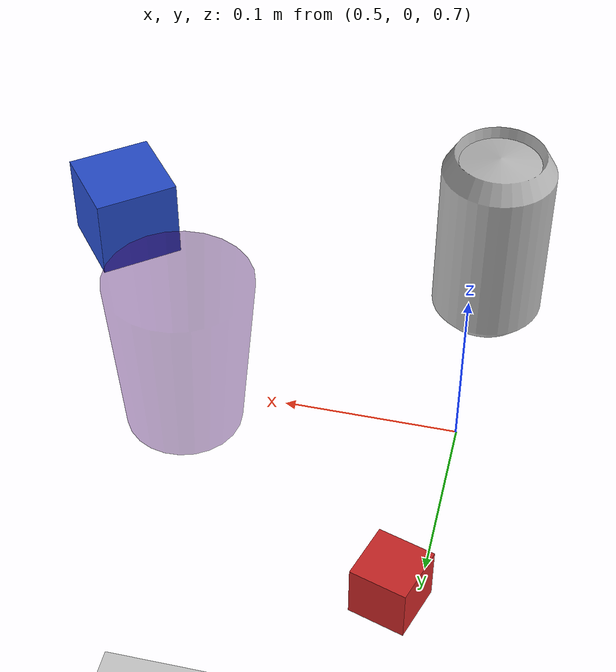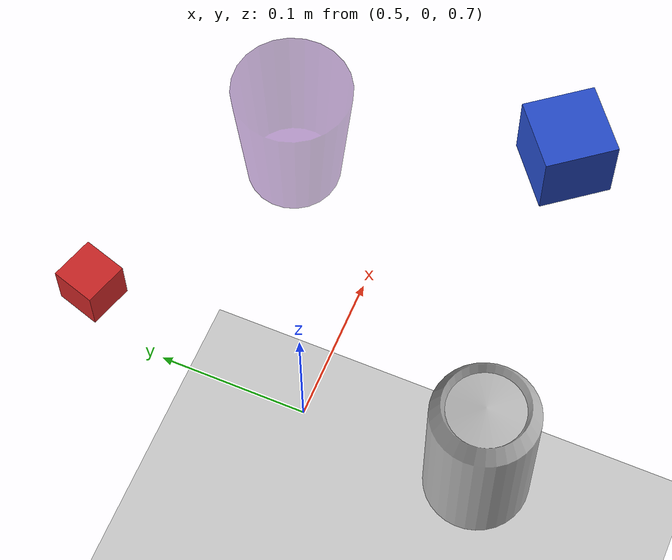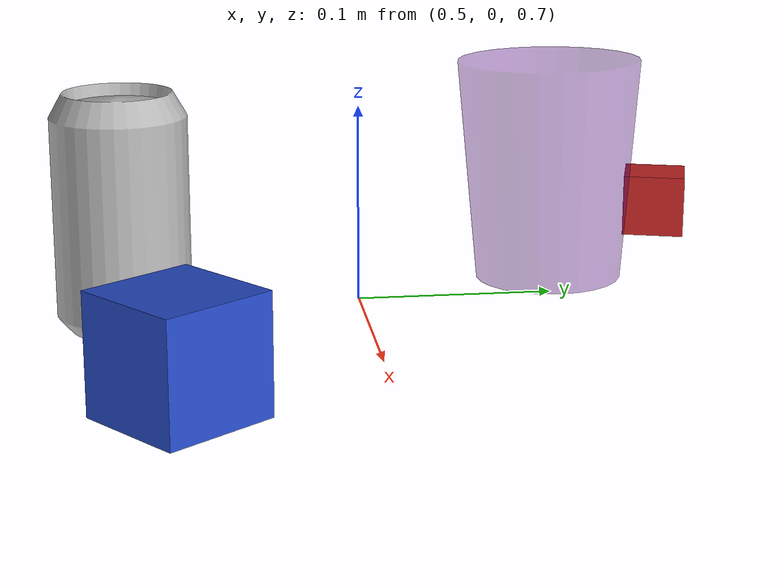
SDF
<sdf version="1.4">
 <world name="simple">
  <include><uri>model://ground_plane</uri></include>
  <include><uri>model://sun</uri></include>
  <include>
   <uri>model://cup_glass</uri>
   <name>cup_glass1</name>
   <pose>0.638184534539 0.0651673542272 0.8 0 0 -1.43274859887</pose>
  </include>
  <include>
   <uri>model://coca_cola</uri>
   <name>coca_cola1</name>
   <pose>0.500197613602 -0.118745901376 0.75 0 0 -2.78397345778</pose>
  </include>
  <include>
   <uri>model://blue_cube5cm</uri>
   <name>blue_cube5cm1</name>
   <pose>0.723948475973 -0.0937514904264 0.75 0 0 -2.47457378201</pose>
  </include>
  <include>
   <uri>model://red_cube3cm</uri>
   <name>red_cube3cm1</name>
   <pose>0.510371905182 0.15048219073 0.75 0 0 1.27214950142</pose>
  </include>
 </world>
</sdf>

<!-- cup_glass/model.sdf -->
<sdf version='1.6'>
  <model name='cup_glass'>
    <static>1</static>
    <link name='link_16'>
      <self_collide>0</self_collide>
      <kinematic>0</kinematic>
      <gravity>1</gravity>
      <inertial>
        <mass>0.3</mass>
        <inertia>
          <ixx>5e-04</ixx>
          <ixy>0</ixy>
          <ixz>0</ixz>
          <iyy>5e-04</iyy>
          <iyz>0</iyz>
          <izz>5e-04</izz>
        </inertia>
      </inertial>
      <visual name='visual'>
        <pose frame=''>0 0 -0.05 0 -0 0</pose>
        <geometry>
          <mesh>
            <uri>model://cup_glass/meshes/cup_glass.dae</uri>
            <scale>1 1 1</scale>
          </mesh>
        </geometry>
        <material>
          <lighting>1</lighting>
          <ambient>0.325 0.023 0.513 1</ambient>
          <diffuse>0.325 0.023 0.513 1</diffuse>
          <specular>0.01 0.01 0.01 1</specular>
          <emissive>0 0 0 1</emissive>
          <shader type='vertex'>
            <normal_map>__default__</normal_map>
          </shader>
          <script>
            <name>ModelPreview_2::link_16::visual_MATERIAL_</name>
            <uri>__default__</uri>
          </script>
        </material>
        <cast_shadows>1</cast_shadows>
        <transparency>0.6</transparency>
      </visual>
      <collision name='collision'>
        <pose frame=''>0 0 -0.05 0 -0 0</pose>
        <geometry>
          <mesh>
            <uri>/home/mamantov/catkin_ws/src/rosie_motion/models/cup_glass/meshes/cup_glass.dae</uri>
          </mesh>
        </geometry>
        <surface>
          <friction>
            <ode>
              <mu>0.2</mu>
              <mu2>0.2</mu2>
            </ode>
          </friction>
          <contact>
            <ode>
              <kp>1000000.0</kp>
              <kd>100.0</kd>
              <max_vel>1.0</max_vel>
              <min_depth>0.002</min_depth>
            </ode>
          </contact>
        </surface>
      </collision>
    </link>
    <allow_auto_disable>1</allow_auto_disable>
  </model>
</sdf>

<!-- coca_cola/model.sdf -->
<sdf version="1.5">
  <model name="coca_cola">
    <link name="link">
      <inertial>
        <mass>0.390</mass>
        <inertia>
          <ixx>0.00058</ixx>
          <ixy>0</ixy>
          <ixz>0</ixz>
          <iyy>0.00058</iyy>
          <iyz>0</iyz>
          <izz>0.00019</izz>
        </inertia>
      </inertial>
      <collision name="collision">
        <geometry>
          <cylinder>
            <radius>0.0301625</radius>
            <length>0.12065</length>
          </cylinder>
        </geometry>
      </collision>
	<visual name="bodyMesh">
	<geometry>
	  <mesh>
	    <uri>model://coca_cola/meshes/coke.dae</uri>
	  	<scale>1 1 1</scale>
	  </mesh>
	  </geometry>
	</visual>
    </link>
 </model>
</sdf>

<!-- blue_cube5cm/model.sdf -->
<sdf version='1.4'>
  <model name="blue_cube5cm">
      <static>0</static>
      <link name='link'>
        <inertial>
          <mass>0.3</mass>
          <inertia>
            <ixx>0.001</ixx>
            <ixy>0.000000</ixy>
            <ixz>0.000000</ixz>
            <iyy>0.001</iyy>
            <iyz>0.000000</iyz>
            <izz>0.001</izz>
          </inertia>
        </inertial>
        <collision name='collision'>
          <geometry>
            <box>
              <size>0.050 0.050 0.050</size>
            </box>
          </geometry>
          <surface>
            <friction>
              <ode>
                <mu>5.0</mu>
                <mu2>5.0</mu2>
              </ode>
            </friction>
            <contact>
              <ode>
                <kp>1000000.0</kp>
                <kd>100.0</kd>
                <max_vel>1.0</max_vel>
                <min_depth>0.002</min_depth>
              </ode>
            </contact>
          </surface>
        </collision>
        <visual name='visual'>
          <geometry>
            <box>
              <size>0.050 0.050 0.050</size>
            </box>
          </geometry>
          <material>
            <script>
              <uri>file://media/materials/scripts/gazebo.material</uri>
              <name>Gazebo/Blue</name>
            </script>
          </material>
        </visual>
        <velocity_decay>
          <linear>0.000000</linear>
          <angular>0.000000</angular>
        </velocity_decay>
        <self_collide>0</self_collide>
        <kinematic>0</kinematic>
        <gravity>1</gravity>
      </link>
  </model>
</sdf>

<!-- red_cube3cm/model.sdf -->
<sdf version='1.4'>
  <model name="red_cube3cm">
      <static>0</static>
      <link name='link'>
        <inertial>
          <mass>0.3</mass>
          <inertia>
            <ixx>0.001</ixx>
            <ixy>0.000000</ixy>
            <ixz>0.000000</ixz>
            <iyy>0.001</iyy>
            <iyz>0.000000</iyz>
            <izz>0.001</izz>
          </inertia>
        </inertial>
        <collision name='collision'>
          <geometry>
            <box>
              <size>0.030 0.030 0.030</size>
            </box>
          </geometry>
          <surface>
            <friction>
              <ode>
                <mu>5.0</mu>
                <mu2>5.0</mu2>
              </ode>
            </friction>
            <contact>
              <ode>
                <kp>1000000.0</kp>
                <kd>100.0</kd>
                <max_vel>1.0</max_vel>
                <min_depth>0.002</min_depth>
              </ode>
            </contact>
          </surface>
        </collision>
        <visual name='visual'>
          <geometry>
            <box>
              <size>0.030 0.030 0.030</size>
            </box>
          </geometry>
          <material>
            <script>
              <uri>file://media/materials/scripts/gazebo.material</uri>
              <name>Gazebo/Red</name>
            </script>
          </material>
        </visual>
        <velocity_decay>
          <linear>0.000000</linear>
          <angular>0.000000</angular>
        </velocity_decay>
        <self_collide>0</self_collide>
        <kinematic>0</kinematic>
        <gravity>1</gravity>
      </link>
  </model>
</sdf>
